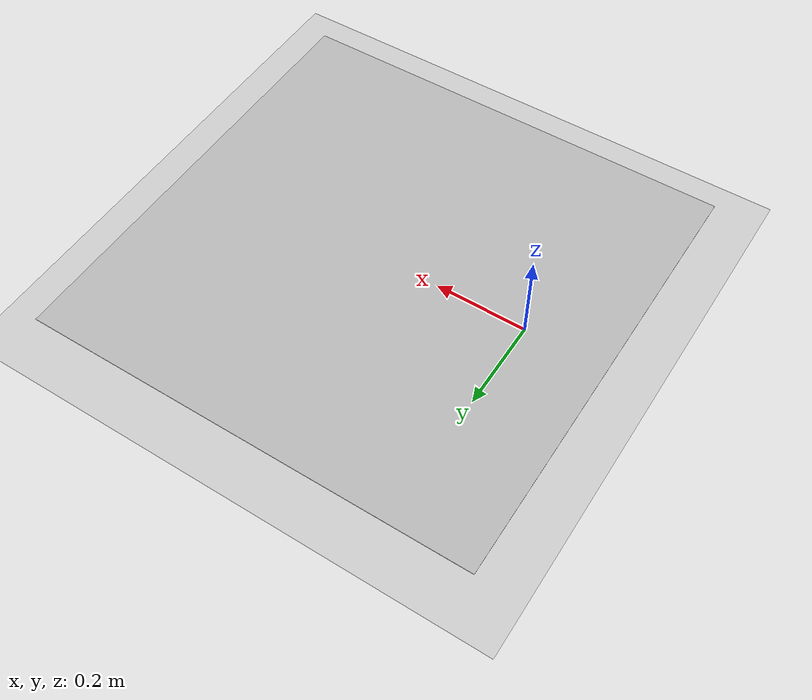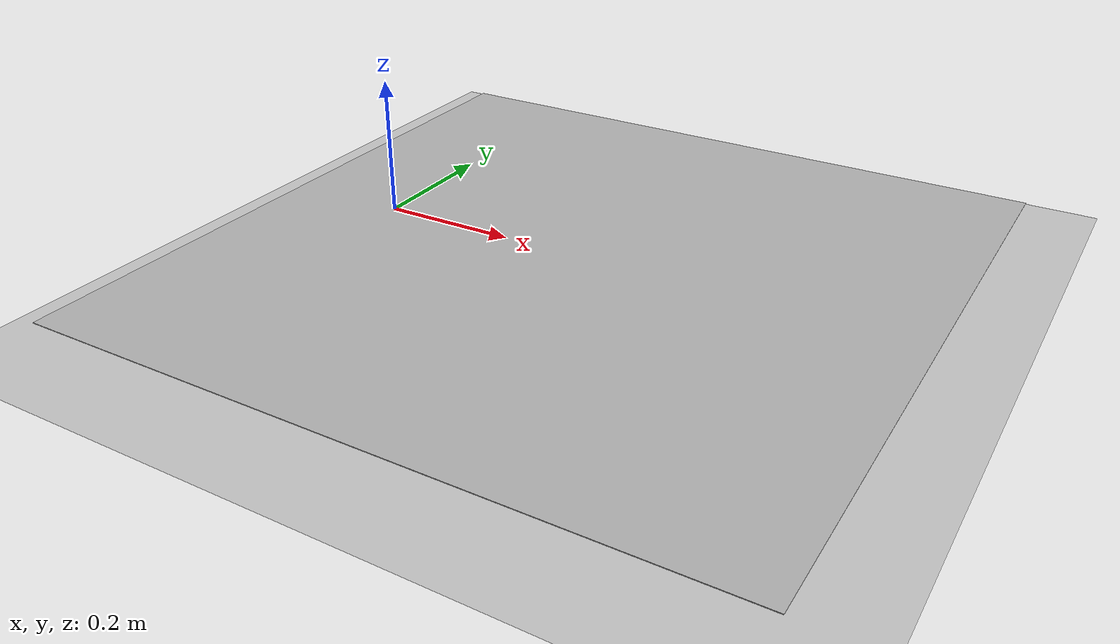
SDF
<?xml version="1.0"?>
<sdf version="1.5">
  <world name="default">

    <!-- A gazebo links attacher -->

    <!-- A global light source -->
    <include>
      <uri>model://sun</uri>
    </include>

    <!-- A ground plane -->
    <include>
      <uri>model://ground_plane</uri>
      <pose>0 0 -0.0405 0 0 0</pose>
    </include>

    <!-- camera view -->
    <gui>
      <camera name="user_default">
            <pose>0.556 -0.9132 0.8266 0 0.59 2.15</pose>
      </camera>
    </gui>

    <!-- chessboard -->
    <include>
      <uri>model://chessboard</uri>
      <pose>0.32 0 0.0 0 0 1.5708</pose>
      <static>1</static>
    </include>

  </world>
</sdf>

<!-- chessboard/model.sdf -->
<sdf version="1.4">
   <model name="chessboard">
      <static>true</static>
      <pose>2 -2 0.1 0 0 4.712</pose>
      <link name="link">
         <collision name="collision">
            <geometry>
               <plane>
                  <normal>0 0 1</normal>
                  <size>1 1</size>
               </plane>
            </geometry>
            <surface>
               <friction>
                  <ode>
                     <mu>100</mu>
                     <mu2>50</mu2>
                  </ode>
               </friction>
            </surface>
         </collision>
         <visual name="visual">
            <cast_shadows>false</cast_shadows>
            <geometry>
               <plane>
                  <normal>0 0 1</normal>
                  <size>1 1</size>
               </plane>
            </geometry>
            <material>
               <script>
                  <uri>model://chessboard/materials/scripts</uri>
                  <uri>model://chessboard/materials/textures/</uri>
                  <name>qrcode/Image</name>
               </script>
            </material>
         </visual>
      </link>
   </model>
</sdf>
